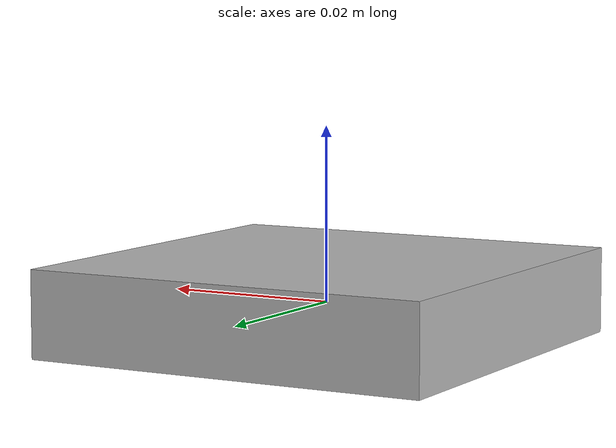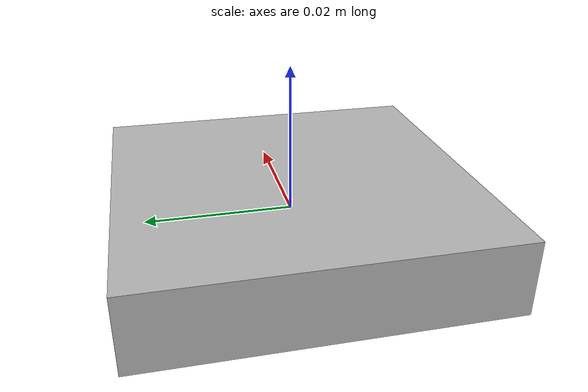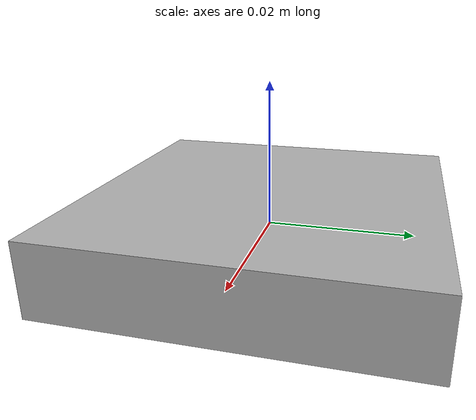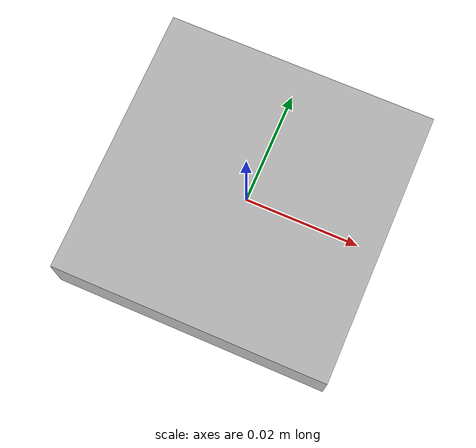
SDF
<?xml version='1.0'?>
<sdf version='1.6'>
  <model name='Apriltag36_11_00004_small'>
    <link name='main'>
    <pose frame=''>0 0 0 0 0 0</pose>
      <visual name='main_Visual'>
        <geometry>
          <box>
          <size>0.0475 0.0475 0.01</size>
          </box>
        </geometry>
           <material>
          <script>
            <uri>model://Apriltag36_11_00004/materials/scripts</uri>
            <uri>model://Apriltag36_11_00004/materials/textures</uri>
            <name>Apriltag36_11_00004</name>
          </script>
        </material>
      </visual>
     </link>
    <static>1</static>
  </model>
</sdf>
